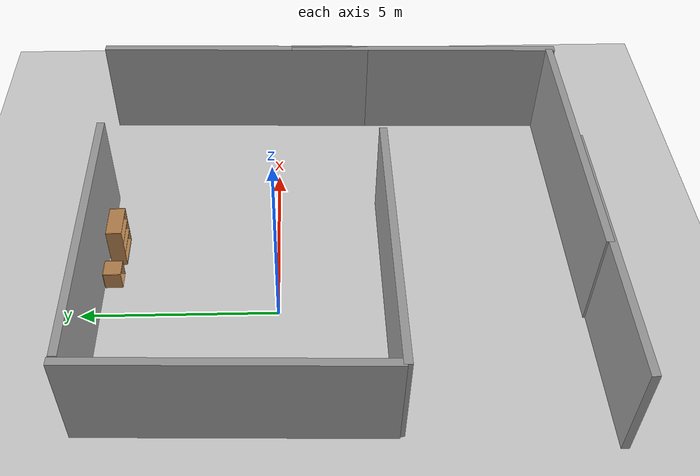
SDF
<sdf version="1.7">
 <world name="default">
  <light name="sun" type="directional">
   <pose>0 0 10 0 -0 0</pose>
   <diffuse>0.8 0.8 0.8 1</diffuse>
   <specular>0.2 0.2 0.2 1</specular>
   <attenuation>
    <range>1000</range>
    <constant>0.9</constant>
    <linear>0.01</linear>
    <quadratic>0.001</quadratic>
   </attenuation>
   <direction>-0.5 0.1 -0.9</direction>
   <spot><inner_angle>0</inner_angle><outer_angle>0</outer_angle><falloff>0</falloff></spot>
  </light>
  <model name="ground_plane">
   <static>1</static>
   <link name="link">
    <collision name="collision">
     <geometry><plane><normal>0 0 1</normal><size>100 100</size></plane></geometry>
     <surface>
      <contact><collide_bitmask>65535</collide_bitmask></contact>
      <friction><ode><mu>100</mu><mu2>50</mu2></ode></friction>
     </surface>
    </collision>
    <visual name="visual">
     <cast_shadows>0</cast_shadows>
     <geometry><plane><normal>0 0 1</normal><size>100 100</size></plane></geometry>
     <material>
      <script><uri>file://media/materials/scripts/gazebo.material</uri><name>Gazebo/Grey</name></script>
     </material>
    </visual>
   </link>
  </model>
  <gravity>0 0 -9.8</gravity>
  <magnetic_field>6e-06 2.3e-05 -4.2e-05</magnetic_field>
  <atmosphere type="adiabatic"/>
  <physics type="ode">
   <max_step_size>0.001</max_step_size>
   <real_time_factor>1</real_time_factor>
   <real_time_update_rate>1000</real_time_update_rate>
  </physics>
  <scene><ambient>0.4 0.4 0.4 1</ambient><background>0.7 0.7 0.7 1</background><shadows>1</shadows></scene>
  <audio><device>default</device></audio>
  <spherical_coordinates>
   <surface_model>EARTH_WGS84</surface_model>
   <latitude_deg>0</latitude_deg>
   <longitude_deg>0</longitude_deg>
   <elevation>0</elevation>
   <heading_deg>0</heading_deg>
  </spherical_coordinates>
  <model name="grey_wall">
   <static>1</static>
   <link name="link">
    <pose>0 0 1.4 0 -0 0</pose>
    <collision name="collision"><geometry><box><size>7.5 0.2 2.8</size></box></geometry></collision>
    <visual name="visual">
     <cast_shadows>0</cast_shadows>
     <geometry><box><size>7.5 0.2 2.8</size></box></geometry>
     <material>
      <script>
       <uri>model://grey_wall/materials/scripts</uri>
       <uri>model://grey_wall/materials/textures</uri>
       <name>vrc/grey_wall</name>
      </script>
     </material>
    </visual>
   </link>
   <pose>0.481339 4.61195 0 0 -0 0</pose>
  </model>
  <model name="grey_wall_0">
   <static>1</static>
   <link name="link">
    <pose>0 0 1.4 0 -0 0</pose>
    <collision name="collision"><geometry><box><size>7.5 0.2 2.8</size></box></geometry></collision>
    <visual name="visual">
     <cast_shadows>0</cast_shadows>
     <geometry><box><size>7.5 0.2 2.8</size></box></geometry>
     <material>
      <script>
       <uri>model://grey_wall/materials/scripts</uri>
       <uri>model://grey_wall/materials/textures</uri>
       <name>vrc/grey_wall</name>
      </script>
     </material>
    </visual>
   </link>
   <pose>3.43542 -7.74193 0 0 -0 0</pose>
  </model>
  <model name="grey_wall_1">
   <static>1</static>
   <link name="link">
    <pose>0 0 1.4 0 -0 0</pose>
    <collision name="collision"><geometry><box><size>7.5 0.2 2.8</size></box></geometry></collision>
    <visual name="visual">
     <cast_shadows>0</cast_shadows>
     <geometry><box><size>7.5 0.2 2.8</size></box></geometry>
     <material>
      <script>
       <uri>model://grey_wall/materials/scripts</uri>
       <uri>model://grey_wall/materials/textures</uri>
       <name>vrc/grey_wall</name>
      </script>
     </material>
    </visual>
   </link>
   <pose>0.109703 -2.77211 0 0 -0 0</pose>
  </model>
  <model name="grey_wall_2">
   <static>1</static>
   <link name="link">
    <pose>0 0 1.4 0 -0 0</pose>
    <collision name="collision"><geometry><box><size>7.5 0.2 2.8</size></box></geometry></collision>
    <visual name="visual">
     <cast_shadows>0</cast_shadows>
     <geometry><box><size>7.5 0.2 2.8</size></box></geometry>
     <material>
      <script>
       <uri>model://grey_wall/materials/scripts</uri>
       <uri>model://grey_wall/materials/textures</uri>
       <name>vrc/grey_wall</name>
      </script>
     </material>
    </visual>
   </link>
   <pose>7.45844 1.16973 0 0 -0 1.54404</pose>
  </model>
  <model name="grey_wall_2_clone">
   <static>1</static>
   <link name="link">
    <pose>0 0 1.4 0 -0 0</pose>
    <collision name="collision"><geometry><box><size>7.5 0.2 2.8</size></box></geometry></collision>
    <visual name="visual">
     <cast_shadows>0</cast_shadows>
     <geometry><box><size>7.5 0.2 2.8</size></box></geometry>
     <material>
      <script>
       <uri>model://grey_wall/materials/scripts</uri>
       <uri>model://grey_wall/materials/textures</uri>
       <name>vrc/grey_wall</name>
      </script>
     </material>
    </visual>
   </link>
   <pose>7.32409 -4.15252 0 0 -0 1.54404</pose>
  </model>
  <model name="grey_wall_2_clone_0">
   <static>1</static>
   <link name="link">
    <pose>0 0 1.4 0 -0 0</pose>
    <collision name="collision"><geometry><box><size>7.5 0.2 2.8</size></box></geometry></collision>
    <visual name="visual">
     <cast_shadows>0</cast_shadows>
     <geometry><box><size>7.5 0.2 2.8</size></box></geometry>
     <material>
      <script>
       <uri>model://grey_wall/materials/scripts</uri>
       <uri>model://grey_wall/materials/textures</uri>
       <name>vrc/grey_wall</name>
      </script>
     </material>
    </visual>
   </link>
   <pose>-3.4871 0.988974 0 0 -0 1.54404</pose>
  </model>
  <model name="grey_wall_3">
   <static>1</static>
   <link name="link">
    <pose>0 0 1.4 0 -0 0</pose>
    <collision name="collision"><geometry><box><size>7.5 0.2 2.8</size></box></geometry></collision>
    <visual name="visual">
     <cast_shadows>0</cast_shadows>
     <geometry><box><size>7.5 0.2 2.8</size></box></geometry>
     <material>
      <script>
       <uri>model://grey_wall/materials/scripts</uri>
       <uri>model://grey_wall/materials/textures</uri>
       <name>vrc/grey_wall</name>
      </script>
     </material>
    </visual>
   </link>
   <pose>-0.305411 -7.79605 0 0 -0 0</pose>
  </model>
  <model name="aruco_dock_marker">
   <static>1</static>
   <link name="dock_plate">
    <collision name="plate_collision"><geometry><box><size>0.2 0.02 0.2</size></box></geometry></collision>
    <visual name="plate_body">
     <geometry><box><size>0.2 0.02 0.2</size></box></geometry>
     <material><ambient>0.3 0.3 0.3 1</ambient><diffuse>0.3 0.3 0.3 1</diffuse></material>
    </visual>
    <visual name="marker_face">
     <pose>0 0.0115 0 0 -0 0</pose>
     <geometry><box><size>0.12 0.003 0.12</size></box></geometry>
     <material>
      <script>
       <uri>model://aruco_dock_marker/materials/scripts</uri>
       <uri>model://aruco_dock_marker/materials/textures</uri>
       <name>ArucoMarker/Marker0</name>
      </script>
     </material>
     <cast_shadows>0</cast_shadows>
    </visual>
   </link>
   <pose>1.19912 4.49153 0.1 0 -0 3.12167</pose>
  </model>
  <model name="bookshelf">
   <static>1</static>
   <link name="link">
    <inertial><mass>1</mass></inertial>
    <collision name="back">
     <pose>0 0.005 0.6 0 -0 0</pose>
     <geometry><box><size>0.9 0.01 1.2</size></box></geometry>
    </collision>
    <visual name="visual1">
     <pose>0 0.005 0.6 0 -0 0</pose>
     <geometry><box><size>0.9 0.01 1.2</size></box></geometry>
     <material>
      <script><uri>file://media/materials/scripts/gazebo.material</uri><name>Gazebo/Wood</name></script>
     </material>
    </visual>
    <collision name="left_side">
     <pose>0.45 -0.195 0.6 0 -0 0</pose>
     <geometry><box><size>0.02 0.4 1.2</size></box></geometry>
    </collision>
    <visual name="visual2">
     <pose>0.45 -0.195 0.6 0 -0 0</pose>
     <geometry><box><size>0.02 0.4 1.2</size></box></geometry>
     <material>
      <script><uri>file://media/materials/scripts/gazebo.material</uri><name>Gazebo/Wood</name></script>
     </material>
    </visual>
    <collision name="right_side">
     <pose>-0.45 -0.195 0.6 0 -0 0</pose>
     <geometry><box><size>0.02 0.4 1.2</size></box></geometry>
    </collision>
    <visual name="visual3">
     <pose>-0.45 -0.195 0.6 0 -0 0</pose>
     <geometry><box><size>0.02 0.4 1.2</size></box></geometry>
     <material>
      <script><uri>file://media/materials/scripts/gazebo.material</uri><name>Gazebo/Wood</name></script>
     </material>
    </visual>
    <collision name="bottom">
     <pose>0 -0.195 0.03 0 -0 0</pose>
     <geometry><box><size>0.88 0.4 0.06</size></box></geometry>
    </collision>
    <visual name="visual4">
     <pose>0 -0.195 0.03 0 -0 0</pose>
     <geometry><box><size>0.88 0.4 0.06</size></box></geometry>
     <material>
      <script><uri>file://media/materials/scripts/gazebo.material</uri><name>Gazebo/Wood</name></script>
     </material>
    </visual>
    <collision name="top">
     <pose>0 -0.195 1.19 0 -0 0</pose>
     <geometry><box><size>0.88 0.4 0.02</size></box></geometry>
    </collision>
    <visual name="visual5">
     <pose>0 -0.195 1.19 0 -0 0</pose>
     <geometry><box><size>0.88 0.4 0.02</size></box></geometry>
     <material>
      <script><uri>file://media/materials/scripts/gazebo.material</uri><name>Gazebo/Wood</name></script>
     </material>
    </visual>
    <collision name="low_shelf">
     <pose>0 -0.195 0.43 0 -0 0</pose>
     <geometry><box><size>0.88 0.4 0.02</size></box></geometry>
    </collision>
    <visual name="visual6">
     <pose>0 -0.195 0.43 0 -0 0</pose>
     <geometry><box><size>0.88 0.4 0.02</size></box></geometry>
     <material>
      <script><uri>file://media/materials/scripts/gazebo.material</uri><name>Gazebo/Wood</name></script>
     </material>
    </visual>
    <collision name="high_shelf">
     <pose>0 -0.195 0.8 0 -0 0</pose>
     <geometry><box><size>0.88 0.4 0.02</size></box></geometry>
    </collision>
    <visual name="visual7">
     <pose>0 -0.195 0.8 0 -0 0</pose>
     <geometry><box><size>0.88 0.4 0.02</size></box></geometry>
     <material>
      <script><uri>file://media/materials/scripts/gazebo.material</uri><name>Gazebo/Wood</name></script>
     </material>
    </visual>
   </link>
   <pose>2.18143 4.40946 0 0 -0 0</pose>
  </model>
  <model name="cabinet">
   <static>1</static>
   <link name="cabinet_bottom_plate">
    <inertial>
     <pose>0 0 -1 0 -0 0</pose>
     <inertia><ixx>2.05</ixx><ixy>0</ixy><ixz>0</ixz><iyy>2.05</iyy><iyz>0</iyz><izz>2.05</izz></inertia>
     <mass>25</mass>
    </inertial>
    <collision name="cabinet_bottom_plate_geom">
     <pose>0 0 0.01 0 -0 0</pose>
     <geometry><box><size>0.45 0.45 0.02</size></box></geometry>
    </collision>
    <visual name="cabinet_bottom_plate_geom_visual">
     <pose>0 0 0.01 0 -0 0</pose>
     <geometry><box><size>0.45 0.45 0.02</size></box></geometry>
     <material>
      <script><uri>file://media/materials/scripts/gazebo.material</uri><name>Gazebo/Wood</name></script>
     </material>
    </visual>
    <collision name="cabinet_bottom_plate_geom_cabinet_back_plate">
     <pose>0.235 0 0.51 0 -0 0</pose>
     <geometry><box><size>0.02 0.45 1.02</size></box></geometry>
    </collision>
    <visual name="cabinet_bottom_plate_geom_cabinet_back_plate_visual">
     <pose>0.235 0 0.51 0 -0 0</pose>
     <geometry><box><size>0.02 0.45 1.02</size></box></geometry>
     <material>
      <script><uri>file://media/materials/scripts/gazebo.material</uri><name>Gazebo/Wood</name></script>
     </material>
    </visual>
    <collision name="cabinet_bottom_plate_geom_cabinet_left_plate">
     <pose>0 0.235 0.51 0 -0 0</pose>
     <geometry><box><size>0.45 0.02 1.02</size></box></geometry>
    </collision>
    <visual name="cabinet_bottom_plate_geom_cabinet_left_plate_visual">
     <pose>0 0.235 0.51 0 -0 0</pose>
     <geometry><box><size>0.45 0.02 1.02</size></box></geometry>
     <material>
      <script><uri>file://media/materials/scripts/gazebo.material</uri><name>Gazebo/Wood</name></script>
     </material>
    </visual>
    <collision name="cabinet_bottom_plate_geom_cabinet_middle_plate">
     <pose>0 0 0.51 0 -0 0</pose>
     <geometry><box><size>0.45 0.45 0.02</size></box></geometry>
    </collision>
    <visual name="cabinet_bottom_plate_geom_cabinet_middle_plate_visual">
     <pose>0 0 0.51 0 -0 0</pose>
     <geometry><box><size>0.45 0.45 0.02</size></box></geometry>
     <material>
      <script><uri>file://media/materials/scripts/gazebo.material</uri><name>Gazebo/Wood</name></script>
     </material>
    </visual>
    <collision name="cabinet_bottom_plate_geom_cabinet_right_plate">
     <pose>0 -0.235 0.51 0 -0 0</pose>
     <geometry><box><size>0.45 0.02 1.02</size></box></geometry>
    </collision>
    <visual name="cabinet_bottom_plate_geom_cabinet_right_plate_visual">
     <pose>0 -0.235 0.51 0 -0 0</pose>
     <geometry><box><size>0.45 0.02 1.02</size></box></geometry>
     <material>
      <script><uri>file://media/materials/scripts/gazebo.material</uri><name>Gazebo/Wood</name></script>
     </material>
    </visual>
    <collision name="cabinet_bottom_plate_geom_cabinet_top_plate">
     <pose>0 0 1.01 0 -0 0</pose>
     <geometry><box><size>0.45 0.45 0.02</size></box></geometry>
    </collision>
    <visual name="cabinet_bottom_plate_geom_cabinet_top_plate_visual">
     <pose>0 0 1.01 0 -0 0</pose>
     <geometry><box><size>0.45 0.45 0.02</size></box></geometry>
     <material>
      <script><uri>file://media/materials/scripts/gazebo.material</uri><name>Gazebo/Wood</name></script>
     </material>
    </visual>
   </link>
   <pose>1.1951 4.26753 -0.532579 0 -0 1.57</pose>
  </model>
 </world>
</sdf>
